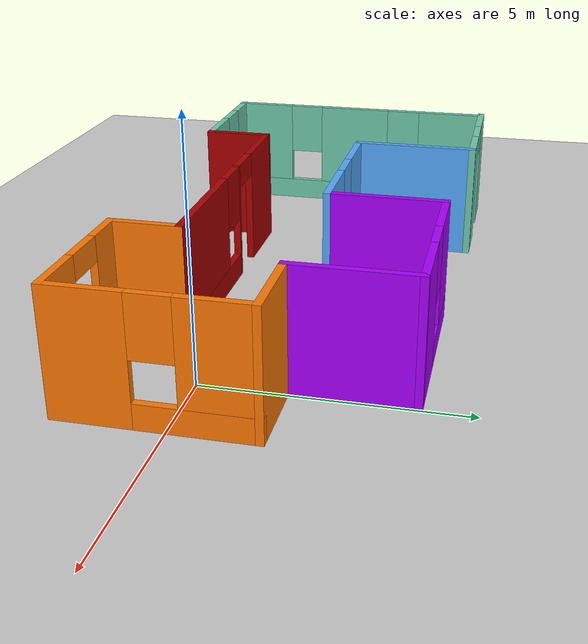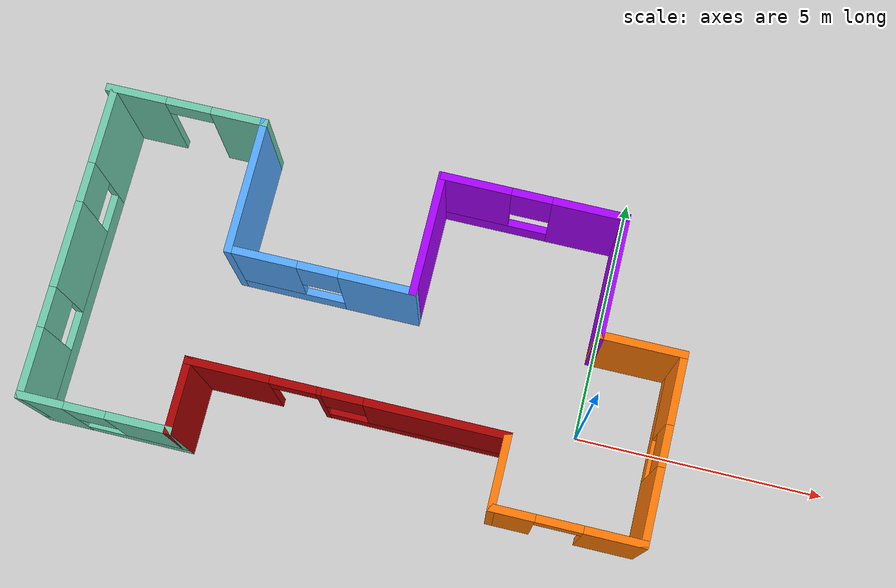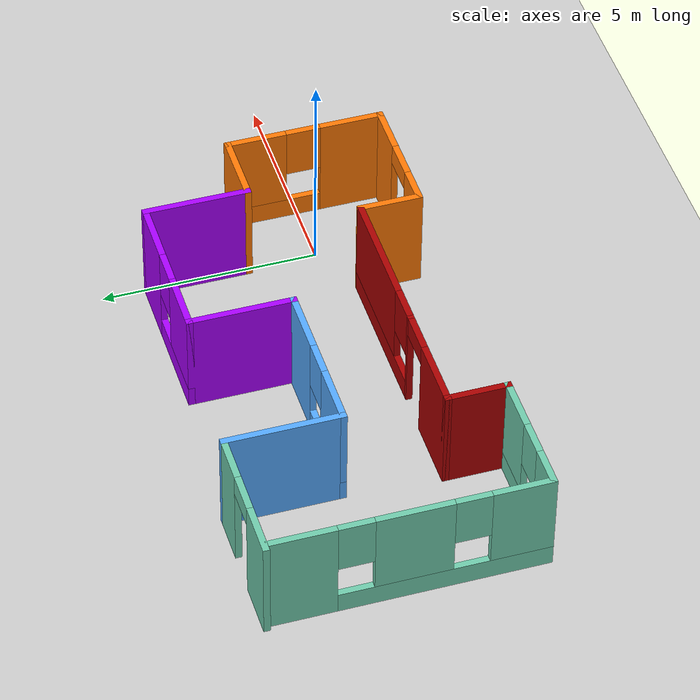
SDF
<sdf version="1.6">
 <world name="default">
  <light name="sun" type="directional">
   <pose>0 0 10 0 -0 0</pose>
   <diffuse>0.8 0.8 0.8 1</diffuse>
   <specular>0.2 0.2 0.2 1</specular>
   <attenuation>
    <range>1000</range>
    <constant>0.9</constant>
    <linear>0.01</linear>
    <quadratic>0.001</quadratic>
   </attenuation>
   <direction>-0.5 0.1 -0.9</direction>
  </light>
  <model name="ground_plane">
   <static>1</static>
   <link name="link">
    <collision name="collision">
     <geometry><plane><normal>0 0 1</normal><size>100 100</size></plane></geometry>
     <surface><friction><ode><mu>100</mu><mu2>50</mu2></ode></friction></surface>
    </collision>
    <visual name="visual">
     <cast_shadows>0</cast_shadows>
     <geometry><plane><normal>0 0 1</normal><size>100 100</size></plane></geometry>
     <material>
      <script><uri>file://media/materials/scripts/gazebo.material</uri><name>Gazebo/Grey</name></script>
     </material>
    </visual>
   </link>
  </model>
  <gravity>0 0 -9.8</gravity>
  <magnetic_field>6e-06 2.3e-05 -4.2e-05</magnetic_field>
  <atmosphere type="adiabatic"/>
  <physics name="default_physics" default="0" type="ode">
   <max_step_size>0.001</max_step_size>
   <real_time_factor>1</real_time_factor>
   <real_time_update_rate>1000</real_time_update_rate>
  </physics>
  <scene><ambient>0.4 0.4 0.4 1</ambient><background>0.7 0.7 0.7 1</background><shadows>1</shadows></scene>
  <spherical_coordinates>
   <surface_model>EARTH_WGS84</surface_model>
   <latitude_deg>0</latitude_deg>
   <longitude_deg>0</longitude_deg>
   <elevation>0</elevation>
   <heading_deg>0</heading_deg>
  </spherical_coordinates>
  <model name="multicolor">
   <pose>-4.4167 1.10742 0 0 -0 0</pose>
   <link name="Wall_0">
    <pose>-5.85 -0.05 0 0 0 -1.5708</pose>
    <visual name="Wall_0_Visual_0">
     <pose>-2.35977 0 1.25 0 -0 0</pose>
     <geometry><box><size>1.53047 0.15 2.5</size></box></geometry>
     <material>
      <script><uri>file://media/materials/scripts/gazebo.material</uri><name>Gazebo/Grey</name></script>
      <ambient>0.435294 0.796078 0.67451 1</ambient>
     </material>
     <meta><layer>0</layer></meta>
    </visual>
    <collision name="Wall_0_Collision_0">
     <geometry><box><size>1.53047 0.15 2.5</size></box></geometry>
     <pose>-2.35977 0 1.25 0 -0 0</pose>
    </collision>
    <visual name="Wall_0_Visual_1">
     <pose>0.765234 0 0.25 0 -0 0</pose>
     <geometry><box><size>4.71953 0.15 0.5</size></box></geometry>
     <material>
      <script><uri>file://media/materials/scripts/gazebo.material</uri><name>Gazebo/Grey</name></script>
      <ambient>0.435294 0.796078 0.67451 1</ambient>
     </material>
     <meta><layer>0</layer></meta>
    </visual>
    <collision name="Wall_0_Collision_1">
     <geometry><box><size>4.71953 0.15 0.5</size></box></geometry>
     <pose>0.765234 0 0.25 0 -0 0</pose>
    </collision>
    <visual name="Wall_0_Visual_2">
     <pose>0.067794 0 1.5 0 -0 0</pose>
     <geometry><box><size>1.72465 0.15 2</size></box></geometry>
     <material>
      <script><uri>file://media/materials/scripts/gazebo.material</uri><name>Gazebo/Grey</name></script>
      <ambient>0.435294 0.796078 0.67451 1</ambient>
     </material>
     <meta><layer>0</layer></meta>
    </visual>
    <collision name="Wall_0_Collision_2">
     <geometry><box><size>1.72465 0.15 2</size></box></geometry>
     <pose>0.067794 0 1.5 0 -0 0</pose>
    </collision>
    <visual name="Wall_0_Visual_3">
     <pose>2.42756 0 1.5 0 -0 0</pose>
     <geometry><box><size>1.39488 0.15 2</size></box></geometry>
     <material>
      <script><uri>file://media/materials/scripts/gazebo.material</uri><name>Gazebo/Grey</name></script>
      <ambient>0.435294 0.796078 0.67451 1</ambient>
     </material>
     <meta><layer>0</layer></meta>
    </visual>
    <collision name="Wall_0_Collision_3">
     <geometry><box><size>1.39488 0.15 2</size></box></geometry>
     <pose>2.42756 0 1.5 0 -0 0</pose>
    </collision>
    <visual name="Wall_0_Visual_4">
     <pose>-1.19453 0 1.9 0 -0 0</pose>
     <geometry><box><size>0.8 0.15 1.2</size></box></geometry>
     <material>
      <script><uri>file://media/materials/scripts/gazebo.material</uri><name>Gazebo/Grey</name></script>
      <ambient>0.435294 0.796078 0.67451 1</ambient>
     </material>
     <meta><layer>0</layer></meta>
    </visual>
    <collision name="Wall_0_Collision_4">
     <geometry><box><size>0.8 0.15 1.2</size></box></geometry>
     <pose>-1.19453 0 1.9 0 -0 0</pose>
    </collision>
    <visual name="Wall_0_Visual_5">
     <pose>1.33012 0 1.9 0 -0 0</pose>
     <geometry><box><size>0.8 0.15 1.2</size></box></geometry>
     <material>
      <script><uri>file://media/materials/scripts/gazebo.material</uri><name>Gazebo/Grey</name></script>
      <ambient>0.435294 0.796078 0.67451 1</ambient>
     </material>
     <meta><layer>0</layer></meta>
    </visual>
    <collision name="Wall_0_Collision_5">
     <geometry><box><size>0.8 0.15 1.2</size></box></geometry>
     <pose>1.33012 0 1.9 0 -0 0</pose>
    </collision>
   </link>
   <link name="Wall_1">
    <pose>-4.425 -3.1 0 0 -0 0</pose>
    <visual name="Wall_1_Visual_0">
     <pose>-1.03894 0 1.25 0 -0 0</pose>
     <geometry><box><size>0.922118 0.15 2.5</size></box></geometry>
     <material>
      <script><uri>file://media/materials/scripts/gazebo.material</uri><name>Gazebo/Grey</name></script>
      <ambient>0.435294 0.796078 0.67451 1</ambient>
     </material>
     <meta><layer>0</layer></meta>
    </visual>
    <collision name="Wall_1_Collision_0">
     <geometry><box><size>0.922118 0.15 2.5</size></box></geometry>
     <pose>-1.03894 0 1.25 0 -0 0</pose>
    </collision>
    <visual name="Wall_1_Visual_1">
     <pose>0.461059 0 0.25 0 -0 0</pose>
     <geometry><box><size>2.07788 0.15 0.5</size></box></geometry>
     <material>
      <script><uri>file://media/materials/scripts/gazebo.material</uri><name>Gazebo/Grey</name></script>
      <ambient>0.435294 0.796078 0.67451 1</ambient>
     </material>
     <meta><layer>0</layer></meta>
    </visual>
    <collision name="Wall_1_Collision_1">
     <geometry><box><size>2.07788 0.15 0.5</size></box></geometry>
     <pose>0.461059 0 0.25 0 -0 0</pose>
    </collision>
    <visual name="Wall_1_Visual_2">
     <pose>0.861059 0 1.5 0 -0 0</pose>
     <geometry><box><size>1.27788 0.15 2</size></box></geometry>
     <material>
      <script><uri>file://media/materials/scripts/gazebo.material</uri><name>Gazebo/Grey</name></script>
      <ambient>0.435294 0.796078 0.67451 1</ambient>
     </material>
     <meta><layer>0</layer></meta>
    </visual>
    <collision name="Wall_1_Collision_2">
     <geometry><box><size>1.27788 0.15 2</size></box></geometry>
     <pose>0.861059 0 1.5 0 -0 0</pose>
    </collision>
    <visual name="Wall_1_Visual_3">
     <pose>-0.177882 0 1.9 0 -0 0</pose>
     <geometry><box><size>0.8 0.15 1.2</size></box></geometry>
     <material>
      <script><uri>file://media/materials/scripts/gazebo.material</uri><name>Gazebo/Grey</name></script>
      <ambient>0.435294 0.796078 0.67451 1</ambient>
     </material>
     <meta><layer>0</layer></meta>
    </visual>
    <collision name="Wall_1_Collision_3">
     <geometry><box><size>0.8 0.15 1.2</size></box></geometry>
     <pose>-0.177882 0 1.9 0 -0 0</pose>
    </collision>
   </link>
   <link name="Wall_10">
    <collision name="Wall_10_Collision">
     <geometry><box><size>2.5 0.15 2.5</size></box></geometry>
     <pose>0 0 1.25 0 -0 0</pose>
    </collision>
    <visual name="Wall_10_Visual">
     <pose>0 0 1.25 0 -0 0</pose>
     <geometry><box><size>2.5 0.15 2.5</size></box></geometry>
     <material>
      <script><uri>file://media/materials/scripts/gazebo.material</uri><name>Gazebo/Grey</name></script>
      <ambient>0.666667 0 1 1</ambient>
     </material>
     <meta><layer>0</layer></meta>
    </visual>
    <pose>4.35 1.675 0 0 -0 1.5708</pose>
   </link>
   <link name="Wall_11">
    <pose>2.55 2.85 0 0 -0 3.14159</pose>
    <visual name="Wall_11_Visual_0">
     <pose>-1.11991 0 1.25 0 -0 0</pose>
     <geometry><box><size>1.51019 0.15 2.5</size></box></geometry>
     <material>
      <script><uri>file://media/materials/scripts/gazebo.material</uri><name>Gazebo/Grey</name></script>
      <ambient>0.666667 0 1 1</ambient>
     </material>
     <meta><layer>0</layer></meta>
    </visual>
    <collision name="Wall_11_Collision_0">
     <geometry><box><size>1.51019 0.15 2.5</size></box></geometry>
     <pose>-1.11991 0 1.25 0 -0 0</pose>
    </collision>
    <visual name="Wall_11_Visual_1">
     <pose>0.755094 0 0.25 0 -0 0</pose>
     <geometry><box><size>2.23981 0.15 0.5</size></box></geometry>
     <material>
      <script><uri>file://media/materials/scripts/gazebo.material</uri><name>Gazebo/Grey</name></script>
      <ambient>0.666667 0 1 1</ambient>
     </material>
     <meta><layer>0</layer></meta>
    </visual>
    <collision name="Wall_11_Collision_1">
     <geometry><box><size>2.23981 0.15 0.5</size></box></geometry>
     <pose>0.755094 0 0.25 0 -0 0</pose>
    </collision>
    <visual name="Wall_11_Visual_2">
     <pose>1.15509 0 1.5 0 -0 0</pose>
     <geometry><box><size>1.43981 0.15 2</size></box></geometry>
     <material>
      <script><uri>file://media/materials/scripts/gazebo.material</uri><name>Gazebo/Grey</name></script>
      <ambient>0.666667 0 1 1</ambient>
     </material>
     <meta><layer>0</layer></meta>
    </visual>
    <collision name="Wall_11_Collision_2">
     <geometry><box><size>1.43981 0.15 2</size></box></geometry>
     <pose>1.15509 0 1.5 0 -0 0</pose>
    </collision>
    <visual name="Wall_11_Visual_3">
     <pose>0.035187 0 1.9 0 -0 0</pose>
     <geometry><box><size>0.8 0.15 1.2</size></box></geometry>
     <material>
      <script><uri>file://media/materials/scripts/gazebo.material</uri><name>Gazebo/Grey</name></script>
      <ambient>0.666667 0 1 1</ambient>
     </material>
     <meta><layer>0</layer></meta>
    </visual>
    <collision name="Wall_11_Collision_3">
     <geometry><box><size>0.8 0.15 1.2</size></box></geometry>
     <pose>0.035187 0 1.9 0 -0 0</pose>
    </collision>
   </link>
   <link name="Wall_12">
    <collision name="Wall_12_Collision">
     <geometry><box><size>2.5 0.15 2.5</size></box></geometry>
     <pose>0 0 1.25 0 -0 0</pose>
    </collision>
    <visual name="Wall_12_Visual">
     <pose>0 0 1.25 0 -0 0</pose>
     <geometry><box><size>2.5 0.15 2.5</size></box></geometry>
     <material>
      <script><uri>file://media/materials/scripts/gazebo.material</uri><name>Gazebo/Grey</name></script>
      <ambient>0.666667 0 1 1</ambient>
     </material>
     <meta><layer>0</layer></meta>
    </visual>
    <pose>0.75 1.675 0 0 0 -1.5708</pose>
   </link>
   <link name="Wall_13">
    <pose>-1.05 0.5 0 0 -0 3.14159</pose>
    <visual name="Wall_13_Visual_0">
     <pose>-1.11007 0 1.25 0 -0 0</pose>
     <geometry><box><size>1.52987 0.15 2.5</size></box></geometry>
     <material>
      <script><uri>file://media/materials/scripts/gazebo.material</uri><name>Gazebo/Grey</name></script>
      <ambient>0.333333 0.666667 1 1</ambient>
     </material>
     <meta><layer>0</layer></meta>
    </visual>
    <collision name="Wall_13_Collision_0">
     <geometry><box><size>1.52987 0.15 2.5</size></box></geometry>
     <pose>-1.11007 0 1.25 0 -0 0</pose>
    </collision>
    <visual name="Wall_13_Visual_1">
     <pose>0.764935 0 0.25 0 -0 0</pose>
     <geometry><box><size>2.22013 0.15 0.5</size></box></geometry>
     <material>
      <script><uri>file://media/materials/scripts/gazebo.material</uri><name>Gazebo/Grey</name></script>
      <ambient>0.333333 0.666667 1 1</ambient>
     </material>
     <meta><layer>0</layer></meta>
    </visual>
    <collision name="Wall_13_Collision_1">
     <geometry><box><size>2.22013 0.15 0.5</size></box></geometry>
     <pose>0.764935 0 0.25 0 -0 0</pose>
    </collision>
    <visual name="Wall_13_Visual_2">
     <pose>1.16494 0 1.5 0 -0 0</pose>
     <geometry><box><size>1.42013 0.15 2</size></box></geometry>
     <material>
      <script><uri>file://media/materials/scripts/gazebo.material</uri><name>Gazebo/Grey</name></script>
      <ambient>0.333333 0.666667 1 1</ambient>
     </material>
     <meta><layer>0</layer></meta>
    </visual>
    <collision name="Wall_13_Collision_2">
     <geometry><box><size>1.42013 0.15 2</size></box></geometry>
     <pose>1.16494 0 1.5 0 -0 0</pose>
    </collision>
    <visual name="Wall_13_Visual_3">
     <pose>0.05487 0 1.9 0 -0 0</pose>
     <geometry><box><size>0.8 0.15 1.2</size></box></geometry>
     <material>
      <script><uri>file://media/materials/scripts/gazebo.material</uri><name>Gazebo/Grey</name></script>
      <ambient>0.333333 0.666667 1 1</ambient>
     </material>
     <meta><layer>0</layer></meta>
    </visual>
    <collision name="Wall_13_Collision_3">
     <geometry><box><size>0.8 0.15 1.2</size></box></geometry>
     <pose>0.05487 0 1.9 0 -0 0</pose>
    </collision>
   </link>
   <link name="Wall_14">
    <collision name="Wall_14_Collision">
     <geometry><box><size>2.75 0.15 2.5</size></box></geometry>
     <pose>0 0 1.25 0 -0 0</pose>
    </collision>
    <visual name="Wall_14_Visual">
     <pose>0 0 1.25 0 -0 0</pose>
     <geometry><box><size>2.75 0.15 2.5</size></box></geometry>
     <material>
      <script><uri>file://media/materials/scripts/gazebo.material</uri><name>Gazebo/Grey</name></script>
      <ambient>0.333333 0.666667 1 1</ambient>
     </material>
     <meta><layer>0</layer></meta>
    </visual>
    <pose>-2.85 1.8 0 0 -0 1.5708</pose>
   </link>
   <link name="Wall_15">
    <pose>-4.4 3.1 0 0 -0 3.14159</pose>
    <visual name="Wall_15_Visual_0">
     <pose>-1.05773 0 1.25 0 -0 0</pose>
     <geometry><box><size>1.13454 0.15 2.5</size></box></geometry>
     <material>
      <script><uri>file://media/materials/scripts/gazebo.material</uri><name>Gazebo/Grey</name></script>
      <ambient>0.435294 0.796078 0.67451 1</ambient>
     </material>
     <meta><layer>0</layer></meta>
    </visual>
    <collision name="Wall_15_Collision_0">
     <geometry><box><size>1.13454 0.15 2.5</size></box></geometry>
     <pose>-1.05773 0 1.25 0 -0 0</pose>
    </collision>
    <visual name="Wall_15_Visual_1">
     <pose>1.01727 0 1.25 0 -0 0</pose>
     <geometry><box><size>1.21546 0.15 2.5</size></box></geometry>
     <material>
      <script><uri>file://media/materials/scripts/gazebo.material</uri><name>Gazebo/Grey</name></script>
      <ambient>0.435294 0.796078 0.67451 1</ambient>
     </material>
     <meta><layer>0</layer></meta>
    </visual>
    <collision name="Wall_15_Collision_1">
     <geometry><box><size>1.21546 0.15 2.5</size></box></geometry>
     <pose>1.01727 0 1.25 0 -0 0</pose>
    </collision>
    <visual name="Wall_15_Visual_2">
     <pose>-0.040457 0 2.25 0 -0 0</pose>
     <geometry><box><size>0.9 0.15 0.5</size></box></geometry>
     <material>
      <script><uri>file://media/materials/scripts/gazebo.material</uri><name>Gazebo/Grey</name></script>
      <ambient>0.435294 0.796078 0.67451 1</ambient>
     </material>
     <meta><layer>0</layer></meta>
    </visual>
    <collision name="Wall_15_Collision_2">
     <geometry><box><size>0.9 0.15 0.5</size></box></geometry>
     <pose>-0.040457 0 2.25 0 -0 0</pose>
    </collision>
   </link>
   <link name="Wall_2">
    <collision name="Wall_2_Collision">
     <geometry><box><size>1.5 0.15 2.5</size></box></geometry>
     <pose>0 0 1.25 0 -0 0</pose>
    </collision>
    <visual name="Wall_2_Visual">
     <pose>0 0 1.25 0 -0 0</pose>
     <geometry><box><size>1.5 0.15 2.5</size></box></geometry>
     <material>
      <script><uri>file://media/materials/scripts/gazebo.material</uri><name>Gazebo/Grey</name></script>
      <ambient>0.666667 0 0 1</ambient>
     </material>
     <meta><layer>0</layer></meta>
    </visual>
    <pose>-3 -2.425 0 0 -0 1.5708</pose>
   </link>
   <link name="Wall_3">
    <pose>0.05 -1.75 0 0 -0 0</pose>
    <visual name="Wall_3_Visual_0">
     <pose>-2.3041 0 1.25 0 -0 0</pose>
     <geometry><box><size>1.6418 0.15 2.5</size></box></geometry>
     <material>
      <script><uri>file://media/materials/scripts/gazebo.material</uri><name>Gazebo/Grey</name></script>
      <ambient>0.666667 0 0 1</ambient>
     </material>
     <meta><layer>0</layer></meta>
    </visual>
    <collision name="Wall_3_Collision_0">
     <geometry><box><size>1.6418 0.15 2.5</size></box></geometry>
     <pose>-2.3041 0 1.25 0 -0 0</pose>
    </collision>
    <visual name="Wall_3_Visual_1">
     <pose>-0.536729 0 1.25 0 -0 0</pose>
     <geometry><box><size>0.092942 0.15 2.5</size></box></geometry>
     <material>
      <script><uri>file://media/materials/scripts/gazebo.material</uri><name>Gazebo/Grey</name></script>
      <ambient>0.666667 0 0 1</ambient>
     </material>
     <meta><layer>0</layer></meta>
    </visual>
    <collision name="Wall_3_Collision_1">
     <geometry><box><size>0.092942 0.15 2.5</size></box></geometry>
     <pose>-0.536729 0 1.25 0 -0 0</pose>
    </collision>
    <visual name="Wall_3_Visual_2">
     <pose>1.31737 0 0.25 0 -0 0</pose>
     <geometry><box><size>3.61526 0.15 0.5</size></box></geometry>
     <material>
      <script><uri>file://media/materials/scripts/gazebo.material</uri><name>Gazebo/Grey</name></script>
      <ambient>0.666667 0 0 1</ambient>
     </material>
     <meta><layer>0</layer></meta>
    </visual>
    <collision name="Wall_3_Collision_2">
     <geometry><box><size>3.61526 0.15 0.5</size></box></geometry>
     <pose>1.31737 0 0.25 0 -0 0</pose>
    </collision>
    <visual name="Wall_3_Visual_3">
     <pose>1.71737 0 1.5 0 -0 0</pose>
     <geometry><box><size>2.81526 0.15 2</size></box></geometry>
     <material>
      <script><uri>file://media/materials/scripts/gazebo.material</uri><name>Gazebo/Grey</name></script>
      <ambient>0.666667 0 0 1</ambient>
     </material>
     <meta><layer>0</layer></meta>
    </visual>
    <collision name="Wall_3_Collision_3">
     <geometry><box><size>2.81526 0.15 2</size></box></geometry>
     <pose>1.71737 0 1.5 0 -0 0</pose>
    </collision>
    <visual name="Wall_3_Visual_4">
     <pose>-0.090258 0 1.9 0 -0 0</pose>
     <geometry><box><size>0.8 0.15 1.2</size></box></geometry>
     <material>
      <script><uri>file://media/materials/scripts/gazebo.material</uri><name>Gazebo/Grey</name></script>
      <ambient>0.666667 0 0 1</ambient>
     </material>
     <meta><layer>0</layer></meta>
    </visual>
    <collision name="Wall_3_Collision_4">
     <geometry><box><size>0.8 0.15 1.2</size></box></geometry>
     <pose>-0.090258 0 1.9 0 -0 0</pose>
    </collision>
    <visual name="Wall_3_Visual_5">
     <pose>-1.0332 0 2.25 0 -0 0</pose>
     <geometry><box><size>0.9 0.15 0.5</size></box></geometry>
     <material>
      <script><uri>file://media/materials/scripts/gazebo.material</uri><name>Gazebo/Grey</name></script>
      <ambient>0.666667 0 0 1</ambient>
     </material>
     <meta><layer>0</layer></meta>
    </visual>
    <collision name="Wall_3_Collision_5">
     <geometry><box><size>0.9 0.15 0.5</size></box></geometry>
     <pose>-1.0332 0 2.25 0 -0 0</pose>
    </collision>
   </link>
   <link name="Wall_4">
    <collision name="Wall_4_Collision">
     <geometry><box><size>1.5 0.15 2.5</size></box></geometry>
     <pose>0 0 1.25 0 -0 0</pose>
    </collision>
    <visual name="Wall_4_Visual">
     <pose>0 0 1.25 0 -0 0</pose>
     <geometry><box><size>1.5 0.15 2.5</size></box></geometry>
     <material>
      <script><uri>file://media/materials/scripts/gazebo.material</uri><name>Gazebo/Grey</name></script>
      <ambient>0.996078 0.47451 0.0196078 1</ambient>
     </material>
     <meta><layer>0</layer></meta>
    </visual>
    <pose>3.1 -2.425 0 0 0 -1.5708</pose>
   </link>
   <link name="Wall_5">
    <pose>4.525 -3.1 0 0 -0 0</pose>
    <visual name="Wall_5_Visual_0">
     <pose>-1.05236 0 1.25 0 -0 0</pose>
     <geometry><box><size>0.89528 0.15 2.5</size></box></geometry>
     <material>
      <script><uri>file://media/materials/scripts/gazebo.material</uri><name>Gazebo/Grey</name></script>
      <ambient>0.996078 0.47451 0.0196078 1</ambient>
     </material>
     <meta><layer>0</layer></meta>
    </visual>
    <collision name="Wall_5_Collision_0">
     <geometry><box><size>0.89528 0.15 2.5</size></box></geometry>
     <pose>-1.05236 0 1.25 0 -0 0</pose>
    </collision>
    <visual name="Wall_5_Visual_1">
     <pose>0.89764 0 1.25 0 -0 0</pose>
     <geometry><box><size>1.20472 0.15 2.5</size></box></geometry>
     <material>
      <script><uri>file://media/materials/scripts/gazebo.material</uri><name>Gazebo/Grey</name></script>
      <ambient>0.996078 0.47451 0.0196078 1</ambient>
     </material>
     <meta><layer>0</layer></meta>
    </visual>
    <collision name="Wall_5_Collision_1">
     <geometry><box><size>1.20472 0.15 2.5</size></box></geometry>
     <pose>0.89764 0 1.25 0 -0 0</pose>
    </collision>
    <visual name="Wall_5_Visual_2">
     <pose>-0.15472 0 2.25 0 -0 0</pose>
     <geometry><box><size>0.9 0.15 0.5</size></box></geometry>
     <material>
      <script><uri>file://media/materials/scripts/gazebo.material</uri><name>Gazebo/Grey</name></script>
      <ambient>0.996078 0.47451 0.0196078 1</ambient>
     </material>
     <meta><layer>0</layer></meta>
    </visual>
    <collision name="Wall_5_Collision_2">
     <geometry><box><size>0.9 0.15 0.5</size></box></geometry>
     <pose>-0.15472 0 2.25 0 -0 0</pose>
    </collision>
   </link>
   <link name="Wall_6">
    <pose>5.95 -1.3 0 0 -0 1.5708</pose>
    <visual name="Wall_6_Visual_0">
     <pose>-1.11672 0 1.25 0 -0 0</pose>
     <geometry><box><size>1.51655 0.15 2.5</size></box></geometry>
     <material>
      <script><uri>file://media/materials/scripts/gazebo.material</uri><name>Gazebo/Grey</name></script>
      <ambient>0.996078 0.47451 0.0196078 1</ambient>
     </material>
     <meta><layer>0</layer></meta>
    </visual>
    <collision name="Wall_6_Collision_0">
     <geometry><box><size>1.51655 0.15 2.5</size></box></geometry>
     <pose>-1.11672 0 1.25 0 -0 0</pose>
    </collision>
    <visual name="Wall_6_Visual_1">
     <pose>0.758275 0 0.25 0 -0 0</pose>
     <geometry><box><size>2.23345 0.15 0.5</size></box></geometry>
     <material>
      <script><uri>file://media/materials/scripts/gazebo.material</uri><name>Gazebo/Grey</name></script>
      <ambient>0.996078 0.47451 0.0196078 1</ambient>
     </material>
     <meta><layer>0</layer></meta>
    </visual>
    <collision name="Wall_6_Collision_1">
     <geometry><box><size>2.23345 0.15 0.5</size></box></geometry>
     <pose>0.758275 0 0.25 0 -0 0</pose>
    </collision>
    <visual name="Wall_6_Visual_2">
     <pose>1.15827 0 1.5 0 -0 0</pose>
     <geometry><box><size>1.43345 0.15 2</size></box></geometry>
     <material>
      <script><uri>file://media/materials/scripts/gazebo.material</uri><name>Gazebo/Grey</name></script>
      <ambient>0.996078 0.47451 0.0196078 1</ambient>
     </material>
     <meta><layer>0</layer></meta>
    </visual>
    <collision name="Wall_6_Collision_2">
     <geometry><box><size>1.43345 0.15 2</size></box></geometry>
     <pose>1.15827 0 1.5 0 -0 0</pose>
    </collision>
    <visual name="Wall_6_Visual_3">
     <pose>0.04155 0 1.9 0 -0 0</pose>
     <geometry><box><size>0.8 0.15 1.2</size></box></geometry>
     <material>
      <script><uri>file://media/materials/scripts/gazebo.material</uri><name>Gazebo/Grey</name></script>
      <ambient>0.996078 0.47451 0.0196078 1</ambient>
     </material>
     <meta><layer>0</layer></meta>
    </visual>
    <collision name="Wall_6_Collision_3">
     <geometry><box><size>0.8 0.15 1.2</size></box></geometry>
     <pose>0.04155 0 1.9 0 -0 0</pose>
    </collision>
   </link>
   <link name="Wall_9">
    <collision name="Wall_9_Collision">
     <geometry><box><size>1.75 0.15 2.5</size></box></geometry>
     <pose>0 0 1.25 0 -0 0</pose>
    </collision>
    <visual name="Wall_9_Visual">
     <pose>0 0 1.25 0 -0 0</pose>
     <geometry><box><size>1.75 0.15 2.5</size></box></geometry>
     <material>
      <script><uri>file://media/materials/scripts/gazebo.material</uri><name>Gazebo/Grey</name></script>
      <ambient>0.996078 0.47451 0.0196078 1</ambient>
     </material>
     <meta><layer>0</layer></meta>
    </visual>
    <pose>5.15 0.5 0 0 -0 3.14159</pose>
   </link>
   <static>1</static>
  </model>
 </world>
</sdf>
